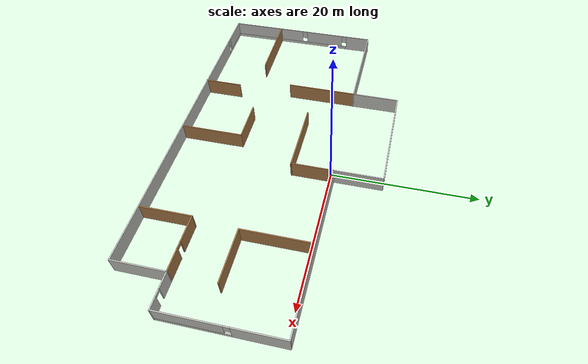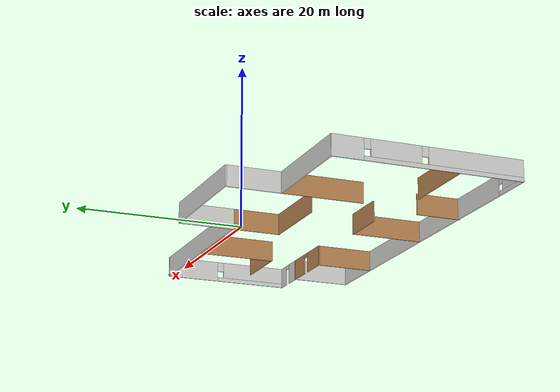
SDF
<?xml version='1.0'?>
<sdf version='1.6'>
  <model name='mybuildingfinal'>
    <pose frame=''>-1.87199 -7.48458 0 0 -0 0</pose>
    <link name='Wall_10'>
      <pose frame=''>25.8721 0.263584 0 0 -0 -1.5708</pose>
      <visual name='Wall_10_Visual_0'>
        <pose frame=''>-4.56574 0 1.25 0 -0 0</pose>
        <geometry>
          <box>
            <size>6.61852 0.15 2.5</size>
          </box>
        </geometry>
        <material>
          <script>
            <uri>file://media/materials/scripts/gazebo.material</uri>
            <name>Gazebo/CeilingTiled</name>
          </script>
          <ambient>0.921569 0.807843 0.615686 1</ambient>
        </material>
        <meta>
          <layer>0</layer>
        </meta>
      </visual>
      <collision name='Wall_10_Collision_0'>
        <geometry>
          <box>
            <size>6.61852 0.15 2.5</size>
          </box>
        </geometry>
        <pose frame=''>-4.56574 0 1.25 0 -0 0</pose>
      </collision>
      <visual name='Wall_10_Visual_1'>
        <pose frame=''>3.30926 0 0.25 0 -0 0</pose>
        <geometry>
          <box>
            <size>9.13148 0.15 0.5</size>
          </box>
        </geometry>
        <material>
          <script>
            <uri>file://media/materials/scripts/gazebo.material</uri>
            <name>Gazebo/CeilingTiled</name>
          </script>
          <ambient>0.921569 0.807843 0.615686 1</ambient>
        </material>
        <meta>
          <layer>0</layer>
        </meta>
      </visual>
      <collision name='Wall_10_Collision_1'>
        <geometry>
          <box>
            <size>9.13148 0.15 0.5</size>
          </box>
        </geometry>
        <pose frame=''>3.30926 0 0.25 0 -0 0</pose>
      </collision>
      <visual name='Wall_10_Visual_2'>
        <pose frame=''>3.70926 0 1.5 0 -0 0</pose>
        <geometry>
          <box>
            <size>8.33148 0.15 2</size>
          </box>
        </geometry>
        <material>
          <script>
            <uri>file://media/materials/scripts/gazebo.material</uri>
            <name>Gazebo/CeilingTiled</name>
          </script>
          <ambient>0.921569 0.807843 0.615686 1</ambient>
        </material>
        <meta>
          <layer>0</layer>
        </meta>
      </visual>
      <collision name='Wall_10_Collision_2'>
        <geometry>
          <box>
            <size>8.33148 0.15 2</size>
          </box>
        </geometry>
        <pose frame=''>3.70926 0 1.5 0 -0 0</pose>
      </collision>
      <visual name='Wall_10_Visual_3'>
        <pose frame=''>-0.856483 0 1.9 0 -0 0</pose>
        <geometry>
          <box>
            <size>0.8 0.15 1.2</size>
          </box>
        </geometry>
        <material>
          <script>
            <uri>file://media/materials/scripts/gazebo.material</uri>
            <name>Gazebo/CeilingTiled</name>
          </script>
          <ambient>0.921569 0.807843 0.615686 1</ambient>
        </material>
        <meta>
          <layer>0</layer>
        </meta>
      </visual>
      <collision name='Wall_10_Collision_3'>
        <geometry>
          <box>
            <size>0.8 0.15 1.2</size>
          </box>
        </geometry>
        <pose frame=''>-0.856483 0 1.9 0 -0 0</pose>
      </collision>
    </link>
    <link name='Wall_11'>
      <pose frame=''>23.5721 -7.53642 0 0 -0 3.14159</pose>
      <visual name='Wall_11_Visual_0'>
        <pose frame=''>-1.55118 0 1.25 0 -0 0</pose>
        <geometry>
          <box>
            <size>1.64763 0.15 2.5</size>
          </box>
        </geometry>
        <material>
          <script>
            <uri>file://media/materials/scripts/gazebo.material</uri>
            <name>Gazebo/CeilingTiled</name>
          </script>
          <ambient>0.921569 0.807843 0.615686 1</ambient>
        </material>
        <meta>
          <layer>0</layer>
        </meta>
      </visual>
      <collision name='Wall_11_Collision_0'>
        <geometry>
          <box>
            <size>1.64763 0.15 2.5</size>
          </box>
        </geometry>
        <pose frame=''>-1.55118 0 1.25 0 -0 0</pose>
      </collision>
      <visual name='Wall_11_Visual_1'>
        <pose frame=''>1.27382 0 1.25 0 -0 0</pose>
        <geometry>
          <box>
            <size>2.20237 0.15 2.5</size>
          </box>
        </geometry>
        <material>
          <script>
            <uri>file://media/materials/scripts/gazebo.material</uri>
            <name>Gazebo/CeilingTiled</name>
          </script>
          <ambient>0.921569 0.807843 0.615686 1</ambient>
        </material>
        <meta>
          <layer>0</layer>
        </meta>
      </visual>
      <collision name='Wall_11_Collision_1'>
        <geometry>
          <box>
            <size>2.20237 0.15 2.5</size>
          </box>
        </geometry>
        <pose frame=''>1.27382 0 1.25 0 -0 0</pose>
      </collision>
      <visual name='Wall_11_Visual_2'>
        <pose frame=''>-0.277369 0 2.25 0 -0 0</pose>
        <geometry>
          <box>
            <size>0.9 0.15 0.5</size>
          </box>
        </geometry>
        <material>
          <script>
            <uri>file://media/materials/scripts/gazebo.material</uri>
            <name>Gazebo/CeilingTiled</name>
          </script>
          <ambient>0.921569 0.807843 0.615686 1</ambient>
        </material>
        <meta>
          <layer>0</layer>
        </meta>
      </visual>
      <collision name='Wall_11_Collision_2'>
        <geometry>
          <box>
            <size>0.9 0.15 0.5</size>
          </box>
        </geometry>
        <pose frame=''>-0.277369 0 2.25 0 -0 0</pose>
      </collision>
    </link>
    <link name='Wall_12'>
      <collision name='Wall_12_Collision'>
        <geometry>
          <box>
            <size>7.25 0.15 2.5</size>
          </box>
        </geometry>
        <pose frame=''>0 0 1.25 0 -0 0</pose>
      </collision>
      <visual name='Wall_12_Visual'>
        <pose frame=''>0 0 1.25 0 -0 0</pose>
        <geometry>
          <box>
            <size>7.25 0.15 2.5</size>
          </box>
        </geometry>
        <material>
          <script>
            <uri>file://media/materials/scripts/gazebo.material</uri>
            <name>Gazebo/CeilingTiled</name>
          </script>
          <ambient>0.921569 0.807843 0.615686 1</ambient>
        </material>
        <meta>
          <layer>0</layer>
        </meta>
      </visual>
      <pose frame=''>21.2721 -11.0864 0 0 -0 -1.5708</pose>
    </link>
    <link name='Wall_13'>
      <pose frame=''>-2.15294 -14.6364 0 0 -0 3.14159</pose>
      <visual name='Wall_13_Visual_0'>
        <pose frame=''>-2.69809 0 1.25 0 -0 0</pose>
        <geometry>
          <box>
            <size>41.6038 0.15 2.5</size>
          </box>
        </geometry>
        <material>
          <script>
            <uri>file://media/materials/scripts/gazebo.material</uri>
            <name>Gazebo/CeilingTiled</name>
          </script>
          <ambient>0.921569 0.807843 0.615686 1</ambient>
        </material>
        <meta>
          <layer>0</layer>
        </meta>
      </visual>
      <collision name='Wall_13_Collision_0'>
        <geometry>
          <box>
            <size>41.6038 0.15 2.5</size>
          </box>
        </geometry>
        <pose frame=''>-2.69809 0 1.25 0 -0 0</pose>
      </collision>
      <visual name='Wall_13_Visual_1'>
        <pose frame=''>20.8019 0 0.25 0 -0 0</pose>
        <geometry>
          <box>
            <size>5.39618 0.15 0.5</size>
          </box>
        </geometry>
        <material>
          <script>
            <uri>file://media/materials/scripts/gazebo.material</uri>
            <name>Gazebo/CeilingTiled</name>
          </script>
          <ambient>0.921569 0.807843 0.615686 1</ambient>
        </material>
        <meta>
          <layer>0</layer>
        </meta>
      </visual>
      <collision name='Wall_13_Collision_1'>
        <geometry>
          <box>
            <size>5.39618 0.15 0.5</size>
          </box>
        </geometry>
        <pose frame=''>20.8019 0 0.25 0 -0 0</pose>
      </collision>
      <visual name='Wall_13_Visual_2'>
        <pose frame=''>21.2019 0 1.5 0 -0 0</pose>
        <geometry>
          <box>
            <size>4.59618 0.15 2</size>
          </box>
        </geometry>
        <material>
          <script>
            <uri>file://media/materials/scripts/gazebo.material</uri>
            <name>Gazebo/CeilingTiled</name>
          </script>
          <ambient>0.921569 0.807843 0.615686 1</ambient>
        </material>
        <meta>
          <layer>0</layer>
        </meta>
      </visual>
      <collision name='Wall_13_Collision_2'>
        <geometry>
          <box>
            <size>4.59618 0.15 2</size>
          </box>
        </geometry>
        <pose frame=''>21.2019 0 1.5 0 -0 0</pose>
      </collision>
      <visual name='Wall_13_Visual_3'>
        <pose frame=''>18.5038 0 1.9 0 -0 0</pose>
        <geometry>
          <box>
            <size>0.8 0.15 1.2</size>
          </box>
        </geometry>
        <material>
          <script>
            <uri>file://media/materials/scripts/gazebo.material</uri>
            <name>Gazebo/CeilingTiled</name>
          </script>
          <ambient>0.921569 0.807843 0.615686 1</ambient>
        </material>
        <meta>
          <layer>0</layer>
        </meta>
      </visual>
      <collision name='Wall_13_Collision_3'>
        <geometry>
          <box>
            <size>0.8 0.15 1.2</size>
          </box>
        </geometry>
        <pose frame=''>18.5038 0 1.9 0 -0 0</pose>
      </collision>
    </link>
    <link name='Wall_17'>
      <pose frame=''>-25.8008 -3.19077 0 0 -0 -1.56457</pose>
      <visual name='Wall_17_Visual_0'>
        <pose frame=''>-9.564 0 1.25 0 -0 0</pose>
        <geometry>
          <box>
            <size>3.76363 0.15 2.5</size>
          </box>
        </geometry>
        <material>
          <script>
            <uri>file://media/materials/scripts/gazebo.material</uri>
            <name>Gazebo/CeilingTiled</name>
          </script>
          <ambient>0.921569 0.807843 0.615686 1</ambient>
        </material>
        <meta>
          <layer>0</layer>
        </meta>
      </visual>
      <collision name='Wall_17_Collision_0'>
        <geometry>
          <box>
            <size>3.76363 0.15 2.5</size>
          </box>
        </geometry>
        <pose frame=''>-9.564 0 1.25 0 -0 0</pose>
      </collision>
      <visual name='Wall_17_Visual_1'>
        <pose frame=''>1.88182 0 0.25 0 -0 0</pose>
        <geometry>
          <box>
            <size>19.128 0.15 0.5</size>
          </box>
        </geometry>
        <material>
          <script>
            <uri>file://media/materials/scripts/gazebo.material</uri>
            <name>Gazebo/CeilingTiled</name>
          </script>
          <ambient>0.921569 0.807843 0.615686 1</ambient>
        </material>
        <meta>
          <layer>0</layer>
        </meta>
      </visual>
      <collision name='Wall_17_Collision_1'>
        <geometry>
          <box>
            <size>19.128 0.15 0.5</size>
          </box>
        </geometry>
        <pose frame=''>1.88182 0 0.25 0 -0 0</pose>
      </collision>
      <visual name='Wall_17_Visual_2'>
        <pose frame=''>-3.88613 0 1.5 0 -0 0</pose>
        <geometry>
          <box>
            <size>5.99211 0.15 2</size>
          </box>
        </geometry>
        <material>
          <script>
            <uri>file://media/materials/scripts/gazebo.material</uri>
            <name>Gazebo/CeilingTiled</name>
          </script>
          <ambient>0.921569 0.807843 0.615686 1</ambient>
        </material>
        <meta>
          <layer>0</layer>
        </meta>
      </visual>
      <collision name='Wall_17_Collision_2'>
        <geometry>
          <box>
            <size>5.99211 0.15 2</size>
          </box>
        </geometry>
        <pose frame=''>-3.88613 0 1.5 0 -0 0</pose>
      </collision>
      <visual name='Wall_17_Visual_3'>
        <pose frame=''>5.67787 0 1.5 0 -0 0</pose>
        <geometry>
          <box>
            <size>11.5359 0.15 2</size>
          </box>
        </geometry>
        <material>
          <script>
            <uri>file://media/materials/scripts/gazebo.material</uri>
            <name>Gazebo/CeilingTiled</name>
          </script>
          <ambient>0.921569 0.807843 0.615686 1</ambient>
        </material>
        <meta>
          <layer>0</layer>
        </meta>
      </visual>
      <collision name='Wall_17_Collision_3'>
        <geometry>
          <box>
            <size>11.5359 0.15 2</size>
          </box>
        </geometry>
        <pose frame=''>5.67787 0 1.5 0 -0 0</pose>
      </collision>
      <visual name='Wall_17_Visual_4'>
        <pose frame=''>-7.28218 0 1.9 0 -0 0</pose>
        <geometry>
          <box>
            <size>0.8 0.15 1.2</size>
          </box>
        </geometry>
        <material>
          <script>
            <uri>file://media/materials/scripts/gazebo.material</uri>
            <name>Gazebo/CeilingTiled</name>
          </script>
          <ambient>0.921569 0.807843 0.615686 1</ambient>
        </material>
        <meta>
          <layer>0</layer>
        </meta>
      </visual>
      <collision name='Wall_17_Collision_4'>
        <geometry>
          <box>
            <size>0.8 0.15 1.2</size>
          </box>
        </geometry>
        <pose frame=''>-7.28218 0 1.9 0 -0 0</pose>
      </collision>
      <visual name='Wall_17_Visual_5'>
        <pose frame=''>-0.490077 0 1.9 0 -0 0</pose>
        <geometry>
          <box>
            <size>0.8 0.15 1.2</size>
          </box>
        </geometry>
        <material>
          <script>
            <uri>file://media/materials/scripts/gazebo.material</uri>
            <name>Gazebo/CeilingTiled</name>
          </script>
          <ambient>0.921569 0.807843 0.615686 1</ambient>
        </material>
        <meta>
          <layer>0</layer>
        </meta>
      </visual>
      <collision name='Wall_17_Collision_5'>
        <geometry>
          <box>
            <size>0.8 0.15 1.2</size>
          </box>
        </geometry>
        <pose frame=''>-0.490077 0 1.9 0 -0 0</pose>
      </collision>
    </link>
    <link name='Wall_21'>
      <collision name='Wall_21_Collision'>
        <geometry>
          <box>
            <size>5.90079 0.15 2.5</size>
          </box>
        </geometry>
        <pose frame=''>0 0 1.25 0 -0 0</pose>
      </collision>
      <visual name='Wall_21_Visual'>
        <pose frame=''>0 0 1.25 0 -0 0</pose>
        <geometry>
          <box>
            <size>5.90079 0.15 2.5</size>
          </box>
        </geometry>
        <material>
          <script>
            <uri>file://media/materials/scripts/gazebo.material</uri>
            <name>Gazebo/Wood</name>
          </script>
          <ambient>0.760784 0.662745 0.627451 1</ambient>
        </material>
        <meta>
          <layer>0</layer>
        </meta>
      </visual>
      <pose frame=''>3.02206 5.18819 0 0 -0 -1.5708</pose>
    </link>
    <link name='Wall_22'>
      <collision name='Wall_22_Collision'>
        <geometry>
          <box>
            <size>10 0.15 2.5</size>
          </box>
        </geometry>
        <pose frame=''>0 0 1.25 0 -0 0</pose>
      </collision>
      <visual name='Wall_22_Visual'>
        <pose frame=''>0 0 1.25 0 -0 0</pose>
        <geometry>
          <box>
            <size>10 0.15 2.5</size>
          </box>
        </geometry>
        <material>
          <script>
            <uri>file://media/materials/scripts/gazebo.material</uri>
            <name>Gazebo/Wood</name>
          </script>
          <ambient>0.760784 0.662745 0.627451 1</ambient>
        </material>
        <meta>
          <layer>0</layer>
        </meta>
      </visual>
      <pose frame=''>-1.83218 2.24204 0 0 -0 3.14159</pose>
    </link>
    <link name='Wall_29'>
      <collision name='Wall_29_Collision'>
        <geometry>
          <box>
            <size>10 0.15 2.5</size>
          </box>
        </geometry>
        <pose frame=''>0 0 1.25 0 -0 0</pose>
      </collision>
      <visual name='Wall_29_Visual'>
        <pose frame=''>0 0 1.25 0 -0 0</pose>
        <geometry>
          <box>
            <size>10 0.15 2.5</size>
          </box>
        </geometry>
        <material>
          <script>
            <uri>file://media/materials/scripts/gazebo.material</uri>
            <name>Gazebo/Wood</name>
          </script>
          <ambient>0.760784 0.662745 0.627451 1</ambient>
        </material>
        <meta>
          <layer>0</layer>
        </meta>
      </visual>
      <pose frame=''>-12.0779 3.18423 0 0 -0 -1.5708</pose>
    </link>
    <link name='Wall_31'>
      <collision name='Wall_31_Collision'>
        <geometry>
          <box>
            <size>10 0.15 2.5</size>
          </box>
        </geometry>
        <pose frame=''>0 0 1.25 0 -0 0</pose>
      </collision>
      <visual name='Wall_31_Visual'>
        <pose frame=''>0 0 1.25 0 -0 0</pose>
        <geometry>
          <box>
            <size>10 0.15 2.5</size>
          </box>
        </geometry>
        <material>
          <script>
            <uri>file://media/materials/scripts/gazebo.material</uri>
            <name>Gazebo/Wood</name>
          </script>
          <ambient>0.760784 0.662745 0.627451 1</ambient>
        </material>
        <meta>
          <layer>0</layer>
        </meta>
      </visual>
      <pose frame=''>-20.8263 -6.87548 0 0 -0 0</pose>
    </link>
    <link name='Wall_33'>
      <collision name='Wall_33_Collision'>
        <geometry>
          <box>
            <size>5.5 0.15 2.5</size>
          </box>
        </geometry>
        <pose frame=''>0 0 1.25 0 -0 0</pose>
      </collision>
      <visual name='Wall_33_Visual'>
        <pose frame=''>0 0 1.25 0 -0 0</pose>
        <geometry>
          <box>
            <size>5.5 0.15 2.5</size>
          </box>
        </geometry>
        <material>
          <script>
            <uri>file://media/materials/scripts/gazebo.material</uri>
            <name>Gazebo/Wood</name>
          </script>
          <ambient>0.760784 0.662745 0.627451 1</ambient>
        </material>
        <meta>
          <layer>0</layer>
        </meta>
      </visual>
      <pose frame=''>-10.4677 -12.0545 0 0 -0 1.5708</pose>
    </link>
    <link name='Wall_35'>
      <pose frame=''>17.4721 -7.53642 0 0 -0 3.14159</pose>
      <visual name='Wall_35_Visual_0'>
        <pose frame=''>-2.30863 0 1.25 0 -0 0</pose>
        <geometry>
          <box>
            <size>3.13274 0.15 2.5</size>
          </box>
        </geometry>
        <material>
          <script>
            <uri>file://media/materials/scripts/gazebo.material</uri>
            <name>Gazebo/Wood</name>
          </script>
          <ambient>0.760784 0.662745 0.627451 1</ambient>
        </material>
        <meta>
          <layer>0</layer>
        </meta>
      </visual>
      <collision name='Wall_35_Collision_0'>
        <geometry>
          <box>
            <size>3.13274 0.15 2.5</size>
          </box>
        </geometry>
        <pose frame=''>-2.30863 0 1.25 0 -0 0</pose>
      </collision>
      <visual name='Wall_35_Visual_1'>
        <pose frame=''>2.01637 0 1.25 0 -0 0</pose>
        <geometry>
          <box>
            <size>3.71726 0.15 2.5</size>
          </box>
        </geometry>
        <material>
          <script>
            <uri>file://media/materials/scripts/gazebo.material</uri>
            <name>Gazebo/Wood</name>
          </script>
          <ambient>0.760784 0.662745 0.627451 1</ambient>
        </material>
        <meta>
          <layer>0</layer>
        </meta>
      </visual>
      <collision name='Wall_35_Collision_1'>
        <geometry>
          <box>
            <size>3.71726 0.15 2.5</size>
          </box>
        </geometry>
        <pose frame=''>2.01637 0 1.25 0 -0 0</pose>
      </collision>
      <visual name='Wall_35_Visual_2'>
        <pose frame=''>-0.292262 0 2.25 0 -0 0</pose>
        <geometry>
          <box>
            <size>0.9 0.15 0.5</size>
          </box>
        </geometry>
        <material>
          <script>
            <uri>file://media/materials/scripts/gazebo.material</uri>
            <name>Gazebo/Wood</name>
          </script>
          <ambient>0.760784 0.662745 0.627451 1</ambient>
        </material>
        <meta>
          <layer>0</layer>
        </meta>
      </visual>
      <collision name='Wall_35_Collision_2'>
        <geometry>
          <box>
            <size>0.9 0.15 0.5</size>
          </box>
        </geometry>
        <pose frame=''>-0.292262 0 2.25 0 -0 0</pose>
      </collision>
    </link>
    <link name='Wall_38'>
      <collision name='Wall_38_Collision'>
        <geometry>
          <box>
            <size>7.25 0.15 2.5</size>
          </box>
        </geometry>
        <pose frame=''>0 0 1.25 0 -0 0</pose>
      </collision>
      <visual name='Wall_38_Visual'>
        <pose frame=''>0 0 1.25 0 -0 0</pose>
        <geometry>
          <box>
            <size>7.25 0.15 2.5</size>
          </box>
        </geometry>
        <material>
          <script>
            <uri>file://media/materials/scripts/gazebo.material</uri>
            <name>Gazebo/Wood</name>
          </script>
          <ambient>1 1 1 1</ambient>
        </material>
        <meta>
          <layer>0</layer>
        </meta>
      </visual>
      <pose frame=''>13.6721 -11.0864 0 0 -0 -1.5708</pose>
    </link>
    <link name='Wall_4'>
      <collision name='Wall_4_Collision'>
        <geometry>
          <box>
            <size>13.9438 0.15 2.5</size>
          </box>
        </geometry>
        <pose frame=''>0 0 1.25 0 -0 0</pose>
      </collision>
      <visual name='Wall_4_Visual'>
        <pose frame=''>0 0 1.25 0 -0 0</pose>
        <geometry>
          <box>
            <size>13.9438 0.15 2.5</size>
          </box>
        </geometry>
        <material>
          <script>
            <uri>file://media/materials/scripts/gazebo.material</uri>
            <name>Gazebo/CeilingTiled</name>
          </script>
          <ambient>0.921569 0.807843 0.615686 1</ambient>
        </material>
        <meta>
          <layer>0</layer>
        </meta>
      </visual>
      <pose frame=''>-18.904 8.14461 0 0 -0 -0.00513</pose>
    </link>
    <link name='Wall_40'>
      <collision name='Wall_40_Collision'>
        <geometry>
          <box>
            <size>5.75 0.15 2.5</size>
          </box>
        </geometry>
        <pose frame=''>0 0 1.25 0 -0 0</pose>
      </collision>
      <visual name='Wall_40_Visual'>
        <pose frame=''>0 0 1.25 0 -0 0</pose>
        <geometry>
          <box>
            <size>5.75 0.15 2.5</size>
          </box>
        </geometry>
        <material>
          <script>
            <uri>file://media/materials/scripts/gazebo.material</uri>
            <name>Gazebo/Wood</name>
          </script>
          <ambient>0.760784 0.662745 0.627451 1</ambient>
        </material>
        <meta>
          <layer>0</layer>
        </meta>
      </visual>
      <pose frame=''>-3.28081 -5.88488 0 0 -0 0</pose>
    </link>
    <link name='Wall_41'>
      <collision name='Wall_41_Collision'>
        <geometry>
          <box>
            <size>8.75 0.15 2.5</size>
          </box>
        </geometry>
        <pose frame=''>0 0 1.25 0 -0 0</pose>
      </collision>
      <visual name='Wall_41_Visual'>
        <pose frame=''>0 0 1.25 0 -0 0</pose>
        <geometry>
          <box>
            <size>8.75 0.15 2.5</size>
          </box>
        </geometry>
        <material>
          <script>
            <uri>file://media/materials/scripts/gazebo.material</uri>
            <name>Gazebo/Wood</name>
          </script>
          <ambient>0.760784 0.662745 0.627451 1</ambient>
        </material>
        <meta>
          <layer>0</layer>
        </meta>
      </visual>
      <pose frame=''>-0.480807 -10.1849 0 0 -0 -1.5708</pose>
    </link>
    <link name='Wall_43'>
      <collision name='Wall_43_Collision'>
        <geometry>
          <box>
            <size>9.5 0.15 2.5</size>
          </box>
        </geometry>
        <pose frame=''>0 0 1.25 0 -0 0</pose>
      </collision>
      <visual name='Wall_43_Visual'>
        <pose frame=''>0 0 1.25 0 -0 0</pose>
        <geometry>
          <box>
            <size>9.5 0.15 2.5</size>
          </box>
        </geometry>
        <material>
          <script>
            <uri>file://media/materials/scripts/gazebo.material</uri>
            <name>Gazebo/Wood</name>
          </script>
          <ambient>0.760784 0.662745 0.627451 1</ambient>
        </material>
        <meta>
          <layer>0</layer>
        </meta>
      </visual>
      <pose frame=''>14.2265 3.3085 0 0 -0 -1.5708</pose>
    </link>
    <link name='Wall_44'>
      <collision name='Wall_44_Collision'>
        <geometry>
          <box>
            <size>7.25 0.15 2.5</size>
          </box>
        </geometry>
        <pose frame=''>0 0 1.25 0 -0 0</pose>
      </collision>
      <visual name='Wall_44_Visual'>
        <pose frame=''>0 0 1.25 0 -0 0</pose>
        <geometry>
          <box>
            <size>7.25 0.15 2.5</size>
          </box>
        </geometry>
        <material>
          <script>
            <uri>file://media/materials/scripts/gazebo.material</uri>
            <name>Gazebo/Wood</name>
          </script>
          <ambient>0.760784 0.662745 0.627451 1</ambient>
        </material>
        <meta>
          <layer>0</layer>
        </meta>
      </visual>
      <pose frame=''>17.7765 -1.3665 0 0 -0 0</pose>
    </link>
    <link name='Wall_5'>
      <collision name='Wall_5_Collision'>
        <geometry>
          <box>
            <size>6.69953 0.15 2.5</size>
          </box>
        </geometry>
        <pose frame=''>0 0 1.25 0 -0 0</pose>
      </collision>
      <visual name='Wall_5_Visual'>
        <pose frame=''>0 0 1.25 0 -0 0</pose>
        <geometry>
          <box>
            <size>6.69953 0.15 2.5</size>
          </box>
        </geometry>
        <material>
          <script>
            <uri>file://media/materials/scripts/gazebo.material</uri>
            <name>Gazebo/CeilingTiled</name>
          </script>
          <ambient>0.921569 0.807843 0.615686 1</ambient>
        </material>
        <meta>
          <layer>0</layer>
        </meta>
      </visual>
      <pose frame=''>-12.0779 11.384 0 0 -0 1.5708</pose>
    </link>
    <link name='Wall_7'>
      <collision name='Wall_7_Collision'>
        <geometry>
          <box>
            <size>15.25 0.15 2.5</size>
          </box>
        </geometry>
        <pose frame=''>0 0 1.25 0 -0 0</pose>
      </collision>
      <visual name='Wall_7_Visual'>
        <pose frame=''>0 0 1.25 0 -0 0</pose>
        <geometry>
          <box>
            <size>15.25 0.15 2.5</size>
          </box>
        </geometry>
        <material>
          <script>
            <uri>file://media/materials/scripts/gazebo.material</uri>
            <name>Gazebo/CeilingTiled</name>
          </script>
          <ambient>0.921569 0.807843 0.615686 1</ambient>
        </material>
        <meta>
          <layer>0</layer>
        </meta>
      </visual>
      <pose frame=''>-4.52794 14.7295 0 0 -0 0</pose>
    </link>
    <link name='Wall_8'>
      <collision name='Wall_8_Collision'>
        <geometry>
          <box>
            <size>6.74517 0.15 2.5</size>
          </box>
        </geometry>
        <pose frame=''>0 0 1.25 0 -0 0</pose>
      </collision>
      <visual name='Wall_8_Visual'>
        <pose frame=''>0 0 1.25 0 -0 0</pose>
        <geometry>
          <box>
            <size>6.74517 0.15 2.5</size>
          </box>
        </geometry>
        <material>
          <script>
            <uri>file://media/materials/scripts/gazebo.material</uri>
            <name>Gazebo/CeilingTiled</name>
          </script>
          <ambient>0.921569 0.807843 0.615686 1</ambient>
        </material>
        <meta>
          <layer>0</layer>
        </meta>
      </visual>
      <pose frame=''>3.02206 11.3612 0 0 -0 -1.5708</pose>
    </link>
    <link name='Wall_9'>
      <collision name='Wall_9_Collision'>
        <geometry>
          <box>
            <size>23 0.15 2.5</size>
          </box>
        </geometry>
        <pose frame=''>0 0 1.25 0 -0 0</pose>
      </collision>
      <visual name='Wall_9_Visual'>
        <pose frame=''>0 0 1.25 0 -0 0</pose>
        <geometry>
          <box>
            <size>23 0.15 2.5</size>
          </box>
        </geometry>
        <material>
          <script>
            <uri>file://media/materials/scripts/gazebo.material</uri>
            <name>Gazebo/CeilingTiled</name>
          </script>
          <ambient>0.921569 0.807843 0.615686 1</ambient>
        </material>
        <meta>
          <layer>0</layer>
        </meta>
      </visual>
      <pose frame=''>14.4471 8.06358 0 0 -0 0</pose>
    </link>
    <static>1</static>
  </model>
</sdf>
